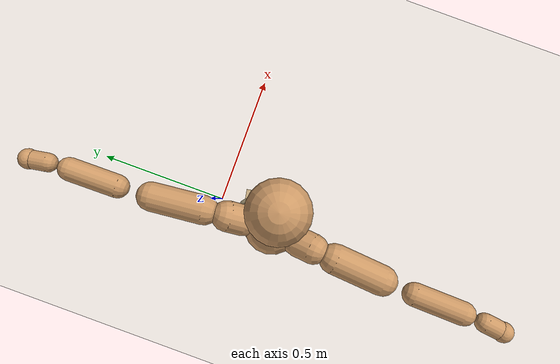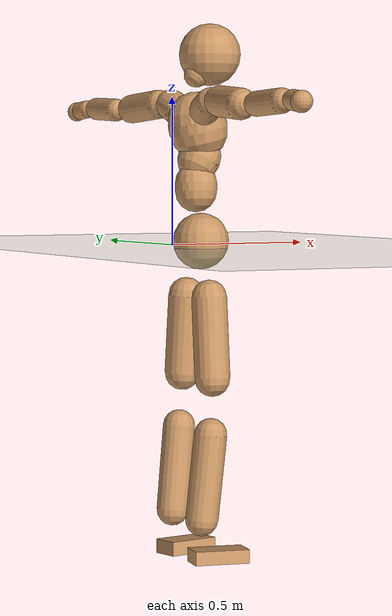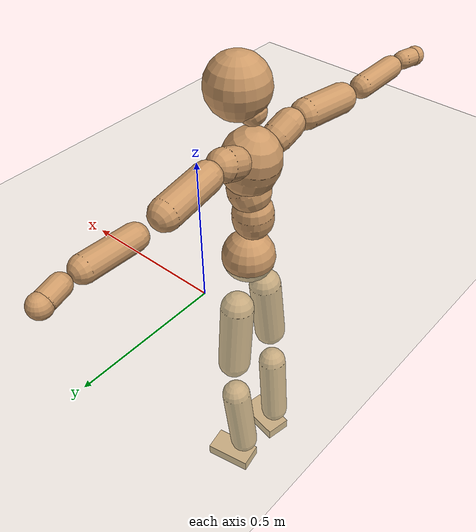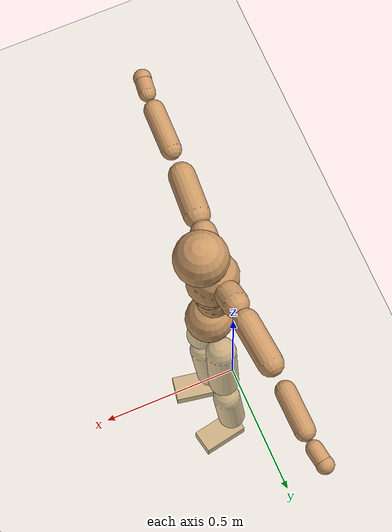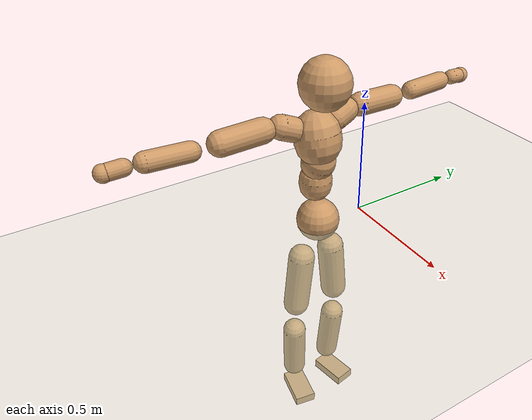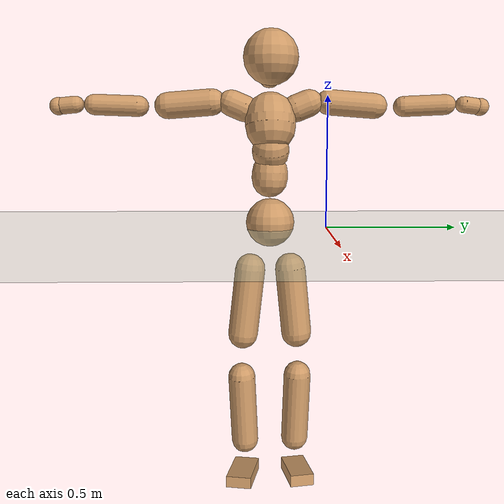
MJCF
<mujoco model="humanoid">
  <compiler coordinate="local" angle="radian"/>
  <default>
    <joint damping="0.0" armature="0.01" stiffness="0.0" limited="true"/>
    <geom conaffinity="1" condim="3" contype="7" margin="0.001" rgba="0.8 0.6 .4 1"/>
  </default>
  <asset>
    <texture type="skybox" builtin="gradient" rgb1=".4 .5 .6" rgb2="0 0 0" width="100" height="100"/>
    <texture builtin="flat" height="1278" mark="cross" markrgb="1 1 1" name="texgeom" random="0.01" rgb1="0.8 0.6 0.4" rgb2="0.8 0.6 0.4" type="cube" width="127"/>
    <texture builtin="checker" height="100" name="texplane" rgb1="0 0 0" rgb2="0.8 0.8 0.8" type="2d" width="100"/>
    <material name="MatPlane" reflectance="0.5" shininess="1" specular="1" texrepeat="60 60" texture="texplane"/>
    <material name="geom" texture="texgeom" texuniform="true"/>
  </asset>
  <worldbody>
    <light cutoff="100" diffuse="1 1 1" dir="-0 0 -1.3" directional="true" exponent="1" pos="0 0 1.3" specular=".1 .1 .1"/>
    <geom conaffinity="1" condim="3" name="floor" pos="0 0 0" rgba="0.8 0.9 0.8 1" size="100 100 .2" type="plane" material="MatPlane"/>
    <body name="Pelvis" pos="-0.0015 -0.2164 0.0211">
      <freejoint name="Pelvis"/>
      <geom type="sphere" contype="1" conaffinity="1" density="500" size="0.0930" pos="0.0000 0.0000 0.0000" name="Pelvis"/>
      <body name="L_Hip" pos="-0.0136 0.0706 -0.0956">
        <joint name="L_Hip_x" type="hinge" pos="0 0 0" axis="1 0 0" stiffness="800" damping="80" armature="0.02" range="-180.0000 180.0000"/>
        <joint name="L_Hip_y" type="hinge" pos="0 0 0" axis="0 1 0" stiffness="800" damping="80" armature="0.02" range="-180.0000 180.0000"/>
        <joint name="L_Hip_z" type="hinge" pos="0 0 0" axis="0 0 1" stiffness="800" damping="80" armature="0.02" range="-180.0000 180.0000"/>
        <geom type="capsule" contype="1" conaffinity="1" density="500" fromto="-0.0006 0.0085 -0.0869 -0.0024 0.0339 -0.3478" size="0.0594" name="L_Hip"/>
        <body name="L_Knee" pos="-0.003 0.0423 -0.4347">
          <joint name="L_Knee_x" type="hinge" pos="0 0 0" axis="1 0 0" stiffness="800" damping="80" armature="0.02" range="-180.0000 180.0000"/>
          <joint name="L_Knee_y" type="hinge" pos="0 0 0" axis="0 1 0" stiffness="800" damping="80" armature="0.02" range="-180.0000 180.0000"/>
          <joint name="L_Knee_z" type="hinge" pos="0 0 0" axis="0 0 1" stiffness="800" damping="80" armature="0.02" range="-180.0000 180.0000"/>
          <geom type="capsule" contype="1" conaffinity="1" density="500" fromto="-0.0095 -0.0029 -0.0937 -0.0379 -0.0115 -0.3746" size="0.0538" name="L_Knee"/>
          <body name="L_Ankle" pos="-0.0474 -0.0143 -0.4683">
            <joint name="L_Ankle_x" type="hinge" pos="0 0 0" axis="1 0 0" stiffness="800" damping="80" armature="0.02" range="-180.0000 180.0000"/>
            <joint name="L_Ankle_y" type="hinge" pos="0 0 0" axis="0 1 0" stiffness="800" damping="80" armature="0.02" range="-180.0000 180.0000"/>
            <joint name="L_Ankle_z" type="hinge" pos="0 0 0" axis="0 0 1" stiffness="800" damping="80" armature="0.02" range="-180.0000 180.0000"/>
            <geom type="box" contype="1" conaffinity="1" density="500" pos="0.0642 0.0120 -0.0328" size="0.0887 0.0471 0.0236" quat="0.9957 0.0000 0.0000 0.0921" name="L_Ankle"/>
            <body name="L_Toe" pos="0.1283 0.0239 -0.0657">
              <joint name="L_Toe_x" type="hinge" pos="0 0 0" axis="1 0 0" stiffness="500" damping="50" armature="0.02" range="-180.0000 180.0000"/>
              <joint name="L_Toe_y" type="hinge" pos="0 0 0" axis="0 1 0" stiffness="500" damping="50" armature="0.02" range="-180.0000 180.0000"/>
              <joint name="L_Toe_z" type="hinge" pos="0 0 0" axis="0 0 1" stiffness="500" damping="50" armature="0.02" range="-180.0000 180.0000"/>
              <geom type="box" contype="1" conaffinity="1" density="500" pos="0.0000 0.0000 0.0322" size="0.001 0.0024 0.0011" quat="0.9952 0.0000 0.0000 0.0981" name="L_Toe"/>
            </body>
          </body>
        </body>
      </body>
      <body name="R_Hip" pos="-0.0081 -0.0676 -0.0946">
        <joint name="R_Hip_x" type="hinge" pos="0 0 0" axis="1 0 0" stiffness="800" damping="80" armature="0.02" range="-180.0000 180.0000"/>
        <joint name="R_Hip_y" type="hinge" pos="0 0 0" axis="0 1 0" stiffness="800" damping="80" armature="0.02" range="-180.0000 180.0000"/>
        <joint name="R_Hip_z" type="hinge" pos="0 0 0" axis="0 0 1" stiffness="800" damping="80" armature="0.02" range="-180.0000 180.0000"/>
        <geom type="capsule" contype="1" conaffinity="1" density="500" fromto="-0.0012 -0.0101 -0.0884 -0.0048 -0.0404 -0.3536" size="0.0584" name="R_Hip"/>
        <body name="R_Knee" pos="-0.0059 -0.0505 -0.4421">
          <joint name="R_Knee_x" type="hinge" pos="0 0 0" axis="1 0 0" stiffness="800" damping="80" armature="0.02" range="-180.0000 180.0000"/>
          <joint name="R_Knee_y" type="hinge" pos="0 0 0" axis="0 1 0" stiffness="800" damping="80" armature="0.02" range="-180.0000 180.0000"/>
          <joint name="R_Knee_z" type="hinge" pos="0 0 0" axis="0 0 1" stiffness="800" damping="80" armature="0.02" range="-180.0000 180.0000"/>
          <geom type="capsule" contype="1" conaffinity="1" density="500" fromto="-0.0089 0.0036 -0.0936 -0.0355 0.0145 -0.3745" size="0.0541" name="R_Knee"/>
          <body name="R_Ankle" pos="-0.0443 0.0181 -0.4681">
            <joint name="R_Ankle_x" type="hinge" pos="0 0 0" axis="1 0 0" stiffness="800" damping="80" armature="0.02" range="-180.0000 180.0000"/>
            <joint name="R_Ankle_y" type="hinge" pos="0 0 0" axis="0 1 0" stiffness="800" damping="80" armature="0.02" range="-180.0000 180.0000"/>
            <joint name="R_Ankle_z" type="hinge" pos="0 0 0" axis="0 0 1" stiffness="800" damping="80" armature="0.02" range="-180.0000 180.0000"/>
            <geom type="box" contype="1" conaffinity="1" density="500" pos="0.0663 -0.0120 -0.0277" size="0.0919 0.0497 0.0227" quat="0.9960 0.0000 0.0000 -0.0895" name="R_Ankle"/>
            <body name="R_Toe" pos="0.1326 -0.024 -0.0555">
              <joint name="R_Toe_x" type="hinge" pos="0 0 0" axis="1 0 0" stiffness="500" damping="50" armature="0.02" range="-180.0000 180.0000"/>
              <joint name="R_Toe_y" type="hinge" pos="0 0 0" axis="0 1 0" stiffness="500" damping="50" armature="0.02" range="-180.0000 180.0000"/>
              <joint name="R_Toe_z" type="hinge" pos="0 0 0" axis="0 0 1" stiffness="500" damping="50" armature="0.02" range="-180.0000 180.0000"/>
              <geom type="box" contype="1" conaffinity="1" density="500" pos="0.0000 0.0000 0.0308" size="0.0009 0.0024 0.0013" quat="0.9967 0.0000 0.0000 -0.0810" name="R_Toe"/>
            </body>
          </body>
        </body>
      </body>
      <body name="Torso" pos="-0.019 -0.0033 0.1102">
        <joint name="Torso_x" type="hinge" pos="0 0 0" axis="1 0 0" stiffness="1000" damping="100" armature="0.02" range="-180.0000 180.0000"/>
        <joint name="Torso_y" type="hinge" pos="0 0 0" axis="0 1 0" stiffness="1000" damping="100" armature="0.02" range="-180.0000 180.0000"/>
        <joint name="Torso_z" type="hinge" pos="0 0 0" axis="0 0 1" stiffness="1000" damping="100" armature="0.02" range="-180.0000 180.0000"/>
        <geom type="capsule" contype="1" conaffinity="1" density="500" fromto="0.0003 0.0029 0.0822 0.0002 0.0019 0.0548" size="0.0693" name="Torso"/>
        <body name="Spine" pos="0.0005 0.0048 0.137">
          <joint name="Spine_x" type="hinge" pos="0 0 0" axis="1 0 0" stiffness="1000" damping="100" armature="0.02" range="-180.0000 180.0000"/>
          <joint name="Spine_y" type="hinge" pos="0 0 0" axis="0 1 0" stiffness="1000" damping="100" armature="0.02" range="-180.0000 180.0000"/>
          <joint name="Spine_z" type="hinge" pos="0 0 0" axis="0 0 1" stiffness="1000" damping="100" armature="0.02" range="-180.0000 180.0000"/>
          <geom type="capsule" contype="1" conaffinity="1" density="500" fromto="0.0161 0.0008 0.0322 0.0108 0.0006 0.0215" size="0.0709" name="Spine"/>
          <body name="Chest" pos="0.0269 0.0014 0.0537">
            <joint name="Chest_x" type="hinge" pos="0 0 0" axis="1 0 0" stiffness="1000" damping="100" armature="0.02" range="-180.0000 180.0000"/>
            <joint name="Chest_y" type="hinge" pos="0 0 0" axis="0 1 0" stiffness="1000" damping="100" armature="0.02" range="-180.0000 180.0000"/>
            <joint name="Chest_z" type="hinge" pos="0 0 0" axis="0 0 1" stiffness="1000" damping="100" armature="0.02" range="-180.0000 180.0000"/>
            <geom type="capsule" contype="1" conaffinity="1" density="500" fromto="-0.0236 -0.0016 0.0954 -0.0158 -0.0011 0.0636" size="0.0968" name="Chest"/>
            <body name="Neck" pos="-0.0379 -0.0056 0.2316">
              <joint name="Neck_x" type="hinge" pos="0 0 0" axis="1 0 0" stiffness="500" damping="50" armature="0.02" range="-180.0000 180.0000"/>
              <joint name="Neck_y" type="hinge" pos="0 0 0" axis="0 1 0" stiffness="500" damping="50" armature="0.02" range="-180.0000 180.0000"/>
              <joint name="Neck_z" type="hinge" pos="0 0 0" axis="0 0 1" stiffness="500" damping="50" armature="0.02" range="-180.0000 180.0000"/>
              <geom type="capsule" contype="1" conaffinity="1" density="500" fromto="0.0128 0.0011 0.0163 0.0510 0.0045 0.0653" size="0.0429" name="Neck"/>
              <body name="Head" pos="0.0638 0.0056 0.0817">
                <joint name="Head_x" type="hinge" pos="0 0 0" axis="1 0 0" stiffness="500" damping="50" armature="0.02" range="-180.0000 180.0000"/>
                <joint name="Head_y" type="hinge" pos="0 0 0" axis="0 1 0" stiffness="500" damping="50" armature="0.02" range="-180.0000 180.0000"/>
                <joint name="Head_z" type="hinge" pos="0 0 0" axis="0 0 1" stiffness="500" damping="50" armature="0.02" range="-180.0000 180.0000"/>
                <geom type="sphere" contype="1" conaffinity="1" density="500" size="0.1026" pos="0.0000 0.0000 0.0000" name="Head"/>
              </body>
            </body>
            <body name="L_Thorax" pos="-0.0382 0.077 0.1234">
              <joint name="L_Thorax_x" type="hinge" pos="0 0 0" axis="1 0 0" stiffness="500" damping="50" armature="0.02" range="-180.0000 180.0000"/>
              <joint name="L_Thorax_y" type="hinge" pos="0 0 0" axis="0 1 0" stiffness="500" damping="50" armature="0.02" range="-180.0000 180.0000"/>
              <joint name="L_Thorax_z" type="hinge" pos="0 0 0" axis="0 0 1" stiffness="500" damping="50" armature="0.02" range="-180.0000 180.0000"/>
              <geom type="capsule" contype="1" conaffinity="1" density="500" fromto="-0.0013 0.0174 0.0070 -0.0054 0.0695 0.0281" size="0.0514" name="L_Thorax"/>
              <body name="L_Shoulder" pos="-0.0067 0.0869 0.0351">
                <joint name="L_Shoulder_x" type="hinge" pos="0 0 0" axis="1 0 0" stiffness="500" damping="50" armature="0.02" range="-720.0000 720.0000"/>
                <joint name="L_Shoulder_y" type="hinge" pos="0 0 0" axis="0 1 0" stiffness="500" damping="50" armature="0.02" range="-720.0000 720.0000"/>
                <joint name="L_Shoulder_z" type="hinge" pos="0 0 0" axis="0 0 1" stiffness="500" damping="50" armature="0.02" range="-720.0000 720.0000"/>
                <geom type="capsule" contype="1" conaffinity="1" density="500" fromto="-0.0060 0.0589 -0.0042 -0.0239 0.2355 -0.0170" size="0.0487" name="L_Shoulder"/>
                <body name="L_Elbow" pos="-0.0298 0.2944 -0.0212">
                  <joint name="L_Elbow_x" type="hinge" pos="0 0 0" axis="1 0 0" stiffness="500" damping="50" armature="0.02" range="-720.0000 720.0000"/>
                  <joint name="L_Elbow_y" type="hinge" pos="0 0 0" axis="0 1 0" stiffness="500" damping="50" armature="0.02" range="-720.0000 720.0000"/>
                  <joint name="L_Elbow_z" type="hinge" pos="0 0 0" axis="0 0 1" stiffness="500" damping="50" armature="0.02" range="-720.0000 720.0000"/>
                  <geom type="capsule" contype="1" conaffinity="1" density="500" fromto="-0.0003 0.0545 0.0025 -0.0012 0.2181 0.0099" size="0.0389" name="L_Elbow"/>
                  <body name="L_Wrist" pos="-0.0015 0.2727 0.0124">
                    <joint name="L_Wrist_x" type="hinge" pos="0 0 0" axis="1 0 0" stiffness="300" damping="30" armature="0.02" range="-180.0000 180.0000"/>
                    <joint name="L_Wrist_y" type="hinge" pos="0 0 0" axis="0 1 0" stiffness="300" damping="30" armature="0.02" range="-180.0000 180.0000"/>
                    <joint name="L_Wrist_z" type="hinge" pos="0 0 0" axis="0 0 1" stiffness="300" damping="30" armature="0.02" range="-180.0000 180.0000"/>
                    <geom type="capsule" contype="1" conaffinity="1" density="500" fromto="-0.0029 0.0169 -0.0021 -0.0114 0.0678 -0.0085" size="0.0314" name="L_Wrist"/>
                    <body name="L_Hand" pos="-0.0143 0.0847 -0.0106">
                      <joint name="L_Hand_x" type="hinge" pos="0 0 0" axis="1 0 0" stiffness="300" damping="30" armature="0.02" range="-180.0000 180.0000"/>
                      <joint name="L_Hand_y" type="hinge" pos="0 0 0" axis="0 1 0" stiffness="300" damping="30" armature="0.02" range="-180.0000 180.0000"/>
                      <joint name="L_Hand_z" type="hinge" pos="0 0 0" axis="0 0 1" stiffness="300" damping="30" armature="0.02" range="-180.0000 180.0000"/>
                      <geom type="sphere" contype="1" conaffinity="1" density="500" size="0.0339" pos="0.0000 0.0000 0.0000" name="L_Hand"/>
                    </body>
                  </body>
                </body>
              </body>
            </body>
            <body name="R_Thorax" pos="-0.0421 -0.0794 0.1218">
              <joint name="R_Thorax_x" type="hinge" pos="0 0 0" axis="1 0 0" stiffness="500" damping="50" armature="0.02" range="-180.0000 180.0000"/>
              <joint name="R_Thorax_y" type="hinge" pos="0 0 0" axis="0 1 0" stiffness="500" damping="50" armature="0.02" range="-180.0000 180.0000"/>
              <joint name="R_Thorax_z" type="hinge" pos="0 0 0" axis="0 0 1" stiffness="500" damping="50" armature="0.02" range="-180.0000 180.0000"/>
              <geom type="capsule" contype="1" conaffinity="1" density="500" fromto="-0.0014 -0.0176 0.0075 -0.0056 -0.0704 0.0298" size="0.0498" name="R_Thorax"/>
              <body name="R_Shoulder" pos="-0.007 -0.088 0.0373">
                <joint name="R_Shoulder_x" type="hinge" pos="0 0 0" axis="1 0 0" stiffness="500" damping="50" armature="0.02" range="-720.0000 720.0000"/>
                <joint name="R_Shoulder_y" type="hinge" pos="0 0 0" axis="0 1 0" stiffness="500" damping="50" armature="0.02" range="-720.0000 720.0000"/>
                <joint name="R_Shoulder_z" type="hinge" pos="0 0 0" axis="0 0 1" stiffness="500" damping="50" armature="0.02" range="-720.0000 720.0000"/>
                <geom type="capsule" contype="1" conaffinity="1" density="500" fromto="-0.0046 -0.0564 -0.0042 -0.0184 -0.2257 -0.0167" size="0.0508" name="R_Shoulder"/>
                <body name="R_Elbow" pos="-0.023 -0.2821 -0.0209">
                  <joint name="R_Elbow_x" type="hinge" pos="0 0 0" axis="1 0 0" stiffness="500" damping="50" armature="0.02" range="-720.0000 720.0000"/>
                  <joint name="R_Elbow_y" type="hinge" pos="0 0 0" axis="0 1 0" stiffness="500" damping="50" armature="0.02" range="-720.0000 720.0000"/>
                  <joint name="R_Elbow_z" type="hinge" pos="0 0 0" axis="0 0 1" stiffness="500" damping="50" armature="0.02" range="-720.0000 720.0000"/>
                  <geom type="capsule" contype="1" conaffinity="1" density="500" fromto="-0.0013 -0.0561 0.0020 -0.0052 -0.2243 0.0081" size="0.0395" name="R_Elbow"/>
                  <body name="R_Wrist" pos="-0.0065 -0.2803 0.0101">
                    <joint name="R_Wrist_x" type="hinge" pos="0 0 0" axis="1 0 0" stiffness="300" damping="30" armature="0.02" range="-180.0000 180.0000"/>
                    <joint name="R_Wrist_y" type="hinge" pos="0 0 0" axis="0 1 0" stiffness="300" damping="30" armature="0.02" range="-180.0000 180.0000"/>
                    <joint name="R_Wrist_z" type="hinge" pos="0 0 0" axis="0 0 1" stiffness="300" damping="30" armature="0.02" range="-180.0000 180.0000"/>
                    <geom type="capsule" contype="1" conaffinity="1" density="500" fromto="-0.0022 -0.0170 -0.0016 -0.0087 -0.0681 -0.0063" size="0.0321" name="R_Wrist"/>
                    <body name="R_Hand" pos="-0.0109 -0.0852 -0.0078">
                      <joint name="R_Hand_x" type="hinge" pos="0 0 0" axis="1 0 0" stiffness="300" damping="30" armature="0.02" range="-180.0000 180.0000"/>
                      <joint name="R_Hand_y" type="hinge" pos="0 0 0" axis="0 1 0" stiffness="300" damping="30" armature="0.02" range="-180.0000 180.0000"/>
                      <joint name="R_Hand_z" type="hinge" pos="0 0 0" axis="0 0 1" stiffness="300" damping="30" armature="0.02" range="-180.0000 180.0000"/>
                      <geom type="sphere" contype="1" conaffinity="1" density="500" size="0.0340" pos="0.0000 0.0000 0.0000" name="R_Hand"/>
                    </body>
                  </body>
                </body>
              </body>
            </body>
          </body>
        </body>
      </body>
    </body>
  </worldbody>
  <actuator>
    <motor name="L_Hip_x" joint="L_Hip_x" gear="500"/>
    <motor name="L_Hip_y" joint="L_Hip_y" gear="500"/>
    <motor name="L_Hip_z" joint="L_Hip_z" gear="500"/>
    <motor name="L_Knee_x" joint="L_Knee_x" gear="500"/>
    <motor name="L_Knee_y" joint="L_Knee_y" gear="500"/>
    <motor name="L_Knee_z" joint="L_Knee_z" gear="500"/>
    <motor name="L_Ankle_x" joint="L_Ankle_x" gear="500"/>
    <motor name="L_Ankle_y" joint="L_Ankle_y" gear="500"/>
    <motor name="L_Ankle_z" joint="L_Ankle_z" gear="500"/>
    <motor name="L_Toe_x" joint="L_Toe_x" gear="500"/>
    <motor name="L_Toe_y" joint="L_Toe_y" gear="500"/>
    <motor name="L_Toe_z" joint="L_Toe_z" gear="500"/>
    <motor name="R_Hip_x" joint="R_Hip_x" gear="500"/>
    <motor name="R_Hip_y" joint="R_Hip_y" gear="500"/>
    <motor name="R_Hip_z" joint="R_Hip_z" gear="500"/>
    <motor name="R_Knee_x" joint="R_Knee_x" gear="500"/>
    <motor name="R_Knee_y" joint="R_Knee_y" gear="500"/>
    <motor name="R_Knee_z" joint="R_Knee_z" gear="500"/>
    <motor name="R_Ankle_x" joint="R_Ankle_x" gear="500"/>
    <motor name="R_Ankle_y" joint="R_Ankle_y" gear="500"/>
    <motor name="R_Ankle_z" joint="R_Ankle_z" gear="500"/>
    <motor name="R_Toe_x" joint="R_Toe_x" gear="500"/>
    <motor name="R_Toe_y" joint="R_Toe_y" gear="500"/>
    <motor name="R_Toe_z" joint="R_Toe_z" gear="500"/>
    <motor name="Torso_x" joint="Torso_x" gear="500"/>
    <motor name="Torso_y" joint="Torso_y" gear="500"/>
    <motor name="Torso_z" joint="Torso_z" gear="500"/>
    <motor name="Spine_x" joint="Spine_x" gear="500"/>
    <motor name="Spine_y" joint="Spine_y" gear="500"/>
    <motor name="Spine_z" joint="Spine_z" gear="500"/>
    <motor name="Chest_x" joint="Chest_x" gear="500"/>
    <motor name="Chest_y" joint="Chest_y" gear="500"/>
    <motor name="Chest_z" joint="Chest_z" gear="500"/>
    <motor name="Neck_x" joint="Neck_x" gear="500"/>
    <motor name="Neck_y" joint="Neck_y" gear="500"/>
    <motor name="Neck_z" joint="Neck_z" gear="500"/>
    <motor name="Head_x" joint="Head_x" gear="500"/>
    <motor name="Head_y" joint="Head_y" gear="500"/>
    <motor name="Head_z" joint="Head_z" gear="500"/>
    <motor name="L_Thorax_x" joint="L_Thorax_x" gear="500"/>
    <motor name="L_Thorax_y" joint="L_Thorax_y" gear="500"/>
    <motor name="L_Thorax_z" joint="L_Thorax_z" gear="500"/>
    <motor name="L_Shoulder_x" joint="L_Shoulder_x" gear="500"/>
    <motor name="L_Shoulder_y" joint="L_Shoulder_y" gear="500"/>
    <motor name="L_Shoulder_z" joint="L_Shoulder_z" gear="500"/>
    <motor name="L_Elbow_x" joint="L_Elbow_x" gear="500"/>
    <motor name="L_Elbow_y" joint="L_Elbow_y" gear="500"/>
    <motor name="L_Elbow_z" joint="L_Elbow_z" gear="500"/>
    <motor name="L_Wrist_x" joint="L_Wrist_x" gear="500"/>
    <motor name="L_Wrist_y" joint="L_Wrist_y" gear="500"/>
    <motor name="L_Wrist_z" joint="L_Wrist_z" gear="500"/>
    <motor name="L_Hand_x" joint="L_Hand_x" gear="500"/>
    <motor name="L_Hand_y" joint="L_Hand_y" gear="500"/>
    <motor name="L_Hand_z" joint="L_Hand_z" gear="500"/>
    <motor name="R_Thorax_x" joint="R_Thorax_x" gear="500"/>
    <motor name="R_Thorax_y" joint="R_Thorax_y" gear="500"/>
    <motor name="R_Thorax_z" joint="R_Thorax_z" gear="500"/>
    <motor name="R_Shoulder_x" joint="R_Shoulder_x" gear="500"/>
    <motor name="R_Shoulder_y" joint="R_Shoulder_y" gear="500"/>
    <motor name="R_Shoulder_z" joint="R_Shoulder_z" gear="500"/>
    <motor name="R_Elbow_x" joint="R_Elbow_x" gear="500"/>
    <motor name="R_Elbow_y" joint="R_Elbow_y" gear="500"/>
    <motor name="R_Elbow_z" joint="R_Elbow_z" gear="500"/>
    <motor name="R_Wrist_x" joint="R_Wrist_x" gear="500"/>
    <motor name="R_Wrist_y" joint="R_Wrist_y" gear="500"/>
    <motor name="R_Wrist_z" joint="R_Wrist_z" gear="500"/>
    <motor name="R_Hand_x" joint="R_Hand_x" gear="500"/>
    <motor name="R_Hand_y" joint="R_Hand_y" gear="500"/>
    <motor name="R_Hand_z" joint="R_Hand_z" gear="500"/>
  </actuator>
  <contact>
    <exclude body1="Torso" body2="Chest"/>
    <exclude body1="Head" body2="Chest"/>
    <exclude body1="R_Knee" body2="R_Toe"/>
    <exclude body1="R_Knee" body2="L_Ankle"/>
    <exclude body1="R_Knee" body2="L_Toe"/>
    <exclude body1="L_Knee" body2="L_Toe"/>
    <exclude body1="L_Knee" body2="R_Ankle"/>
    <exclude body1="L_Knee" body2="R_Toe"/>
    <exclude body1="L_Shoulder" body2="Chest"/>
    <exclude body1="R_Shoulder" body2="Chest"/>
  </contact>
  <sensor/>
  <size njmax="700" nconmax="700"/>
</mujoco>
